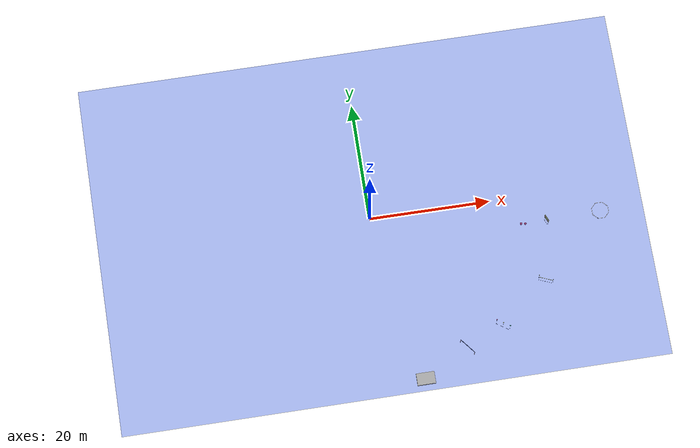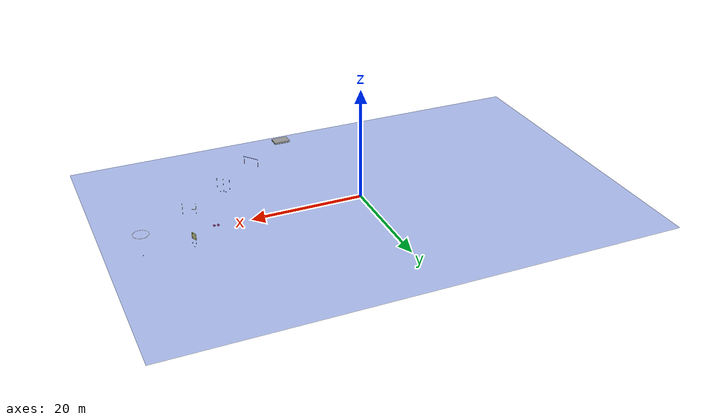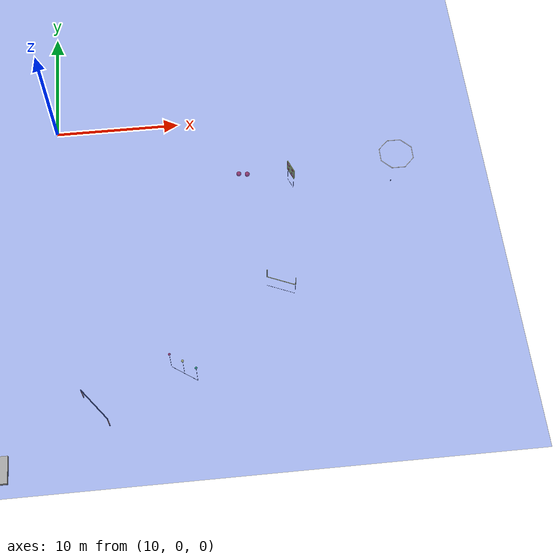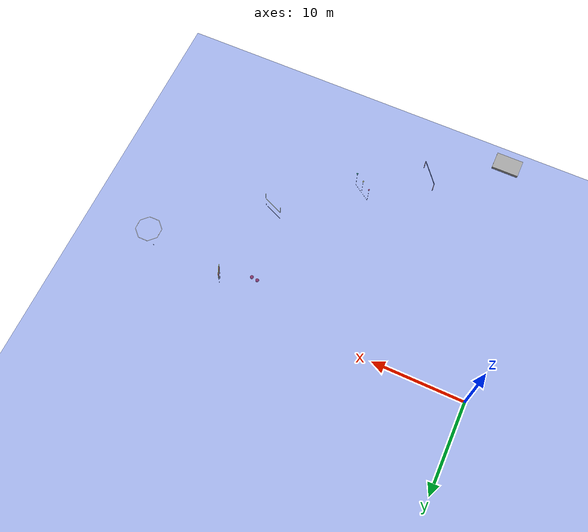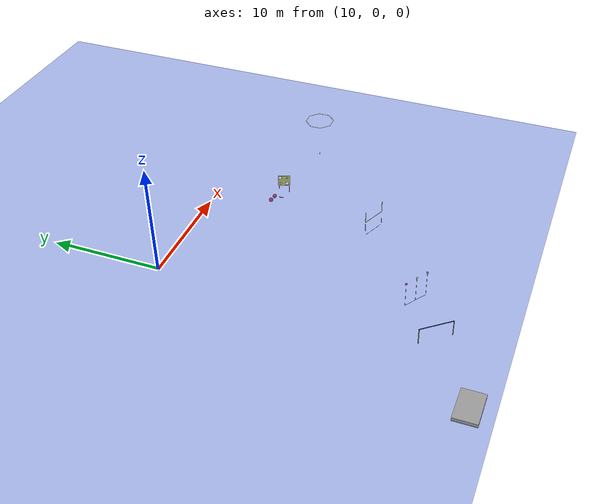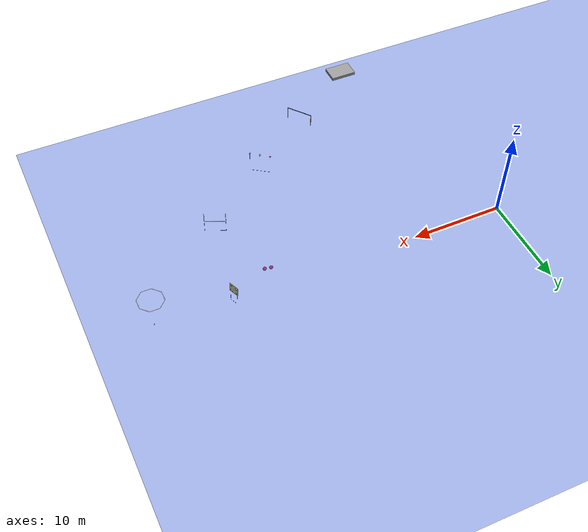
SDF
<sdf version="1.5">
 <world name="default">
  <scene>
   <ambient>0.25 0.3 1 1</ambient>
   <grid>0</grid>
   <background>0.25 0.3 1 1</background>
   <shadows>1</shadows>
  </scene>
  <light type="directional" name="sun0">
   <pose>8 -21 10 0 0.8 -2.8</pose>
   <diffuse>0.8 0.8 0.8 1</diffuse>
   <specular>0.2 0.2 0.2 1</specular>
   <attenuation>
    <range>1000</range>
    <constant>0.9</constant>
    <linear>0.01</linear>
    <quadratic>0.001</quadratic>
   </attenuation>
   <direction>-0.5 0.1 -0.9</direction>
  </light>
  <light type="directional" name="sun1">
   <pose>8 -20 10 0 0.8 0</pose>
   <diffuse>0.8 0.8 0.8 1</diffuse>
   <specular>0.2 0.2 0.2 1</specular>
   <attenuation>
    <range>1000</range>
    <constant>0.9</constant>
    <linear>0.01</linear>
    <quadratic>0.001</quadratic>
   </attenuation>
   <direction>-0.5 0.1 -0.9</direction>
  </light>
  <light type="directional" name="sun2">
   <pose>8 -19 10 0 0 0</pose>
   <diffuse>0.8 0.8 0.8 1</diffuse>
   <specular>0.2 0.2 0.2 1</specular>
   <attenuation>
    <range>1000</range>
    <constant>0.9</constant>
    <linear>0.01</linear>
    <quadratic>0.001</quadratic>
   </attenuation>
   <direction>-0.5 0.1 -0.9</direction>
  </light>
  <light type="directional" name="sun3">
   <pose>8 -19 10 1.75 0 0</pose>
   <diffuse>0.8 0.8 0.8 1</diffuse>
   <specular>0.2 0.2 0.2 1</specular>
   <attenuation>
    <range>1000</range>
    <constant>0.9</constant>
    <linear>0.01</linear>
    <quadratic>0.001</quadratic>
   </attenuation>
   <direction>-0.5 0.1 -0.9</direction>
  </light>
  <light type="directional" name="sun4">
   <pose>8 -19 10 1.75 0 2.9</pose>
   <diffuse>0.8 0.8 0.8 1</diffuse>
   <specular>0.2 0.2 0.2 1</specular>
   <attenuation>
    <range>1000</range>
    <constant>0.9</constant>
    <linear>0.01</linear>
    <quadratic>0.001</quadratic>
   </attenuation>
   <direction>-0.5 0.1 -0.9</direction>
  </light>
  <model name="ceiling_plane">
   <static>true</static>
   <pose>0 0 -0.8 0 0 0</pose>
   <link name="link">
    <visual name="visual">
     <cast_shadows>false</cast_shadows>
     <geometry><box><size>90 60 .001</size></box></geometry>
     <material>
      <script><uri>file://media/materials/scripts/gazebo.material</uri><name>Gazebo/BlueTransparent</name></script>
     </material>
     <transparency>0.6</transparency>
    </visual>
   </link>
  </model>
  <model name="dock_side_a">
   <static>true</static>
   <pose>4.8 -28.0 -0.67 0 0 0</pose>
   <link name="link">
    <collision name="collision"><geometry><box><size>3 2 0.35</size></box></geometry></collision>
    <visual name="visual">
     <geometry><box><size>3 2 0.35</size></box></geometry>
     <material>
      <script><uri>file://media/materials/scripts/gazebo.material</uri><name>Gazebo/Grey</name></script>
     </material>
    </visual>
   </link>
  </model>
  <model name="pinger_a">
   <static>true</static>
   <pose>37.88 -4.1 -4.9 0 0 0</pose>
   <link name="link">
    <visual name="visual">
     <geometry><cylinder><radius>0.03</radius><length>0.15</length></cylinder></geometry>
     <material>
      <script><uri>file://media/materials/scripts/gazebo.material</uri><name>Gazebo/FlatBlack</name></script>
     </material>
    </visual>
   </link>
  </model>
  <include><name>gate_side_a</name><pose>12.4 -23.6 -0.9 0 0 -0.9</pose><uri>model://gate</uri></include>
  <include><name>buoys_side_a</name><pose>19.0 -20.2 -5.0 0 0 -0.6</pose><uri>model://buoys</uri></include>
  <include>
   <name>channel_side_a</name>
   <pose>27.3 -13.6 -2.25 0 0 -0.4</pose>
   <uri>model://navigation_channel</uri>
  </include>
  <include><name>octagon_side_a</name><pose>37.88 -4.1 -0.75 0 0 0</pose><uri>model://octagon</uri></include>
  <include><name>marker_bin1_side_a</name><pose>25.93 -4.0 -4.54 0 0 0</pose><uri>model://bins</uri></include>
  <include><name>marker_bin2_side_a</name><pose>26.62 -4.1 -4.54 0 0 0</pose><uri>model://bins</uri></include>
  <include>
   <name>torpedo_target_side_a</name>
   <pose>29.2 -3.5 -2.87 0 0 -1.18</pose>
   <uri>model://torpedo_target</uri>
  </include>
 </world>
</sdf>

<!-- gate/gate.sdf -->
<sdf version='1.5'>

  <model name='gate'>
    <pose>0 0 0 0 0 0</pose>
    <self_collide> 0 </self_collide>
    <static> 1</static>

    <link name='gate_top'>
      <pose>0 0 0 0 1.5707 0</pose>
      <visual name='gate_top_vis'>
        <geometry>
          <cylinder>
            <radius>0.0381</radius>
            <length>3.05</length>
          </cylinder>
        </geometry>
        <material>
          <script>
            <uri>file://media/materials/scripts/gazebo.material</uri>
            <name>Gazebo/FlatBlack</name>
          </script>
        </material>
      </visual>
      <collision name='gate_top_collide'>
        <pose>0 0 0 0 1.5707 0</pose>
        <geometry>
          <cylinder>
            <radius>0.0381</radius>
            <length>3.05</length>
          </cylinder>
        </geometry>
      </collision>
    </link>

    <link name='gate_right'>
      <pose>1.525 0 -0.762 0 0 0</pose>
      <visual name='gate_right_vis'>
        <geometry>
          <cylinder>
            <radius>0.0381</radius>
            <length>1.21</length>
          </cylinder>
        </geometry>
        <material>
          <script>
            <uri>file://media/materials/scripts/gazebo.material</uri>
            <name>Gazebo/Orange</name>
          </script>
          <diffuse>0.6 0.3088 0.0468 1</diffuse>
        </material>
      </visual>
      <visual name='gate_right_top'>
        <pose>0 0 0.6858 0 0 0</pose>
        <geometry>
          <cylinder>
            <radius>0.0381</radius>
            <length>0.16</length>
          </cylinder>
        </geometry>
        <material>
          <script>
            <uri>file://media/materials/scripts/gazebo.material</uri>
            <name>Gazebo/FlatBlack</name>
          </script>
        </material>
      </visual>
      <visual name='gate_right_bottom'>
        <pose>0 0 -0.6858 0 0 0</pose>
        <geometry>
          <cylinder>
            <radius>0.0381</radius>
            <length>0.16</length>
          </cylinder>
        </geometry>
        <material>
          <script>
              <uri>file://media/materials/scripts/gazebo.material</uri>
              <name>Gazebo/FlatBlack</name>
          </script>
        </material>
      </visual>
      <collision name='gate_right_collide'>
        <pose>1.525 0 -0.762 0 0 0</pose>
        <geometry>
          <cylinder>
            <radius>0.0381</radius>
            <length>1.52</length>
          </cylinder>
        </geometry>
      </collision>
    </link>

    <link name='gate_left'>
      <pose>-1.525 0 -0.762 0 0 0</pose>
      <visual name='gate_left_vis'>
        <geometry>
          <cylinder>
            <radius>0.0381</radius>
            <length>1.21</length>
          </cylinder>
        </geometry>
        <material>
          <script>
            <uri>file://media/materials/scripts/gazebo.material</uri>
            <name>Gazebo/Orange</name>
          </script>
          <diffuse>0.6 0.3088 0.0468 1</diffuse>
        </material>
      </visual>
      <visual name='gate_left_top'>
        <pose>0 0 0.6858 0 0 0</pose>
        <geometry>
          <cylinder>
            <radius>0.0381</radius>
            <length>0.16</length>
          </cylinder>
        </geometry>
        <material>
          <script>
            <uri>file://media/materials/scripts/gazebo.material</uri>
            <name>Gazebo/FlatBlack</name>
          </script>
        </material>
      </visual>
      <visual name='gate_left_bottom'>
        <pose>0 0 -0.6858 0 0 0</pose>
        <geometry>
          <cylinder>
            <radius>0.0381</radius>
            <length>0.16</length>
          </cylinder>
        </geometry>
        <material>
          <script>
              <uri>file://media/materials/scripts/gazebo.material</uri>
              <name>Gazebo/FlatBlack</name>
          </script>
        </material>
      </visual>
      <collision name='gate_left_collide'>
        <pose>-1.525 0 -0.762 0 0 0</pose>
        <geometry>
          <cylinder>
            <radius>0.0381</radius>
            <length>1.52</length>
          </cylinder>
        </geometry>
      </collision>
    </link>

  </model>
</sdf>

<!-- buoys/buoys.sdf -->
<sdf version='1.5'>

  <model name='buoys'>
    <pose>0 0 0 0 0 0</pose>
    <self_collide> 0 </self_collide>
    <static> 1</static>

    <link name='red_buoy'>
      <pose>-1.2 0 2.5 0 0 0</pose>
      <visual name='red_vis'>
        <geometry>
          <sphere><radius>0.1</radius></sphere>
        </geometry>
        <material>
          <script>
            <uri>file://media/materials/scripts/gazebo.material</uri>
            <name>Gazebo/Red</name>
          </script>
          <diffuse>0.6 0 0 1</diffuse>
        </material>
      </visual>
      <collision name='red_collide'>
        <geometry>
          <sphere><radius>0.1</radius></sphere>
        </geometry>
      </collision>
    </link>
    <link name='green_buoy'>
      <pose>1.2 0 2.6 0 0 0</pose>
      <visual name='green_vis'>
        <geometry>
          <sphere><radius>0.1</radius></sphere>
        </geometry>
        <material>
          <script>
            <uri>file://media/materials/scripts/gazebo.material</uri>
            <name>Gazebo/Green</name>
          </script>
          <diffuse>0 0.6 0 1</diffuse>
        </material>
      </visual>
      <collision name='green_collide'>
        <geometry>
          <sphere><radius>0.1</radius></sphere>
        </geometry>
      </collision>
    </link>
    <link name='yellow_buoy'>
        <pose>0 0 2.6 0 0 0</pose>
      <visual name='yellow_vis'>
        <geometry>
          <sphere><radius>0.1</radius></sphere>
        </geometry>
        <material>
          <script>
            <uri>file://media/materials/scripts/gazebo.material</uri>
            <name>Gazebo/Yellow</name>
          </script>
          <diffuse>0.6 0.6 0 1</diffuse>
        </material>
      </visual>
      <collision name='yellow_collide'>
        <geometry>
          <sphere><radius>0.1</radius></sphere>
        </geometry>
      </collision>
    </link>
    <link name='bottom_rod'>
        <pose>0 0 0 0 1.5707 0</pose>
        <visual name='bottom_rod_vis'>
          <geometry>
            <cylinder>
              <radius>0.01</radius>
              <length>2.4</length>
            </cylinder>
          </geometry>
        <material>
          <script>
            <uri>file://media/materials/scripts/gazebo.material</uri>
            <name>Gazebo/FlatBlack</name>
          </script>
          <diffuse>0.3 0.3 0.3 1</diffuse>
        </material>
        </visual>
    </link>
    <link name='red_rod'>
        <pose>-1.2 0 1.2 0 0 0</pose>
        <visual name='red_rod_vis'>
          <geometry>
            <cylinder>
              <radius>0.01</radius>
              <length>2.4</length>
            </cylinder>
          </geometry>
        <material>
          <script>
            <uri>file://media/materials/scripts/gazebo.material</uri>
            <name>Gazebo/FlatBlack</name>
          </script>
          <diffuse>0.3 0.3 0.3 1</diffuse>
        </material>
        </visual>
    </link>
    <link name='green_rod'>
        <pose>0 0 1.26 0 0 0</pose>
        <visual name='green_rod_vis'>
          <geometry>
            <cylinder>
              <radius>0.01</radius>
              <length>2.5</length>
            </cylinder>
          </geometry>
        <material>
          <script>
            <uri>file://media/materials/scripts/gazebo.material</uri>
            <name>Gazebo/FlatBlack</name>
          </script>
          <diffuse>0.3 0.3 0.3 1</diffuse>
        </material>
        </visual>
    </link>
    <link name='yellow_rod'>
        <pose>1.2 0 1.26 0 0 0</pose>
        <visual name='yellow_rod_vis'>
          <geometry>
            <cylinder>
              <radius>0.01</radius>
              <length>2.5</length>
            </cylinder>
          </geometry>
        <material>
          <script>
            <uri>file://media/materials/scripts/gazebo.material</uri>
            <name>Gazebo/FlatBlack</name>
          </script>
          <diffuse>0.3 0.3 0.3 1</diffuse>
        </material>
        </visual>
    </link>

  </model>
</sdf>

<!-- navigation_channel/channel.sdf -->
<sdf version='1.5'>

  <model name='channel'>
    <pose>0 0 0 0 0 0</pose>
    <self_collide> 0 </self_collide>
    <static> 1</static>

    <link name='bottom'>
      <pose>0 0 -1.2 0 1.5707 0</pose>
      <visual name='bottom_vis'>
        <geometry>
          <cylinder>
            <radius>0.0254</radius>
            <length>2.4</length>
          </cylinder>
        </geometry>
        <material>
          <script>
            <uri>file://media/materials/scripts/gazebo.material</uri>
            <name>Gazebo/Yellow</name>
          </script>
          <diffuse>0.6 0.6 0 1</diffuse>
        </material>
      </visual>
      <collision name='bottom_collide'>
        <pose>0 0 -1.2 0 1.5707 0</pose>
        <geometry>
          <cylinder>
            <radius>0.0254</radius>
            <length>2.4</length>
          </cylinder>
        </geometry>
      </collision>
    </link>

    <link name='left'>
      <pose>-1.2 0 -0.6 0 0 0</pose>
      <visual name='left_vis'>
        <geometry>
          <cylinder>
            <radius>0.0254</radius>
            <length>1.2</length>
          </cylinder>
        </geometry>
        <material>
          <script>
            <uri>file://media/materials/scripts/gazebo.material</uri>
            <name>Gazebo/Yellow</name>
          </script>
          <diffuse>0.6 0.6 0 1</diffuse>
        </material>
      </visual>
      <collision name='left_collide'>
        <pose>-1.2 0 0.6 0 0 0</pose>
        <geometry>
          <cylinder>
            <radius>0.0254</radius>
            <length>1.2</length>
          </cylinder>
        </geometry>
      </collision>
    </link>

    <link name='right'>
      <pose>1.2 0 -0.6 0 0 0</pose>
      <visual name='right_vis'>
        <geometry>
          <cylinder>
            <radius>0.0254</radius>
            <length>1.2</length>
          </cylinder>
        </geometry>
        <material>
          <script>
            <uri>file://media/materials/scripts/gazebo.material</uri>
            <name>Gazebo/Yellow</name>
          </script>
          <diffuse>0.6 0.6 0 1</diffuse>
        </material>
      </visual>
      <collision name='right_collide'>
        <pose>1.2 0 0.6 0 0 0</pose>
        <geometry>
          <cylinder>
            <radius>0.0254</radius>
            <length>1.2</length>
          </cylinder>
        </geometry>
      </collision>
    </link>

    <link name='left_tether'>
      <pose>-1.2 0 -2.0 0 0 0</pose>
      <visual name='left_tether_vis'>
        <geometry>
          <cylinder>
            <radius>0.01</radius>
            <length>1.5</length>
          </cylinder>
        </geometry>
        <material>
          <script>
            <uri>file://media/materials/scripts/gazebo.material</uri>
            <name>Gazebo/FlatBlack</name>
          </script>
          <diffuse>0.3 0.3 0.3 1</diffuse>
        </material>
      </visual>
      <collision name='left_tether_collide'>
        <pose>-1.2 0 -2.0 0 0 0</pose>
        <geometry>
          <cylinder>
            <radius>0.01</radius>
            <length>1.5</length>
          </cylinder>
        </geometry>
      </collision>
    </link>

    <link name='right_tether'>
      <pose>1.2 0 -2.0 0 0 0</pose>
      <visual name='right_tether_vis'>
        <geometry>
          <cylinder>
            <radius>0.01</radius>
            <length>1.5</length>
          </cylinder>
        </geometry>
        <material>
          <script>
            <uri>file://media/materials/scripts/gazebo.material</uri>
            <name>Gazebo/FlatBlack</name>
          </script>
          <diffuse>0.3 0.3 0.3 1</diffuse>
        </material>
      </visual>
      <collision name='right_tether_collide'>
        <pose>1.2 0 -2.0 0 0 0</pose>
        <geometry>
          <cylinder>
            <radius>0.01</radius>
            <length>1.5</length>
          </cylinder>
        </geometry>
      </collision>
    </link>

    <link name='floor'>
      <pose>0 0 -2.75 0 1.5707 0</pose>
      <visual name='floor_vis'>
        <geometry>
          <cylinder>
            <radius>0.01</radius>
            <length>2.4</length>
          </cylinder>
        </geometry>
        <material>
          <script>
            <uri>file://media/materials/scripts/gazebo.material</uri>
            <name>Gazebo/FlatBlack</name>
          </script>
          <diffuse>0.3 0.3 0.3 1</diffuse>
        </material>
      </visual>
      <collision name='floor_collide'>
        <pose>0 0 -2.75 0 1.5707 0</pose>
        <geometry>
          <cylinder>
            <radius>0.01</radius>
            <length>2.4</length>
          </cylinder>
        </geometry>
      </collision>
    </link>
  </model>
</sdf>

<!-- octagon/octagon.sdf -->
<sdf version='1.5'>

  <model name='octagon'>
    <pose>0 0 0 0 0 0</pose>
    <self_collide> 0 </self_collide>
    <static> 1</static>

    <link name='rod1'>
        <pose>0 1.35 0 0 1.5707 0</pose>
        <visual name='rod1_vis'>
          <geometry>
            <cylinder>
              <radius>0.0254</radius>
              <length>1.118</length>
            </cylinder>
          </geometry>
        <material>
          <script>
            <uri>file://media/materials/scripts/gazebo.material</uri>
            <name>Gazebo/White</name>
          </script>
          <diffuse>0.3 0.3 0.3 1</diffuse>
        </material>
        </visual>
        <collision name='rod1_collide'>
          <pose>1.35 0 0 0 1.5707 0</pose>
          <geometry>
            <cylinder>
              <radius>0.0254</radius>
              <length>1.118</length>
            </cylinder>
          </geometry>
        </collision>
    </link>

    <link name='rod2'>
        <pose>0 -1.35 0 0 1.5707 0</pose>
        <visual name='rod2_vis'>
          <geometry>
            <cylinder>
              <radius>0.0254</radius>
              <length>1.118</length>
            </cylinder>
          </geometry>
        <material>
          <script>
            <uri>file://media/materials/scripts/gazebo.material</uri>
            <name>Gazebo/White</name>
          </script>
          <diffuse>0.3 0.3 0.3 1</diffuse>
        </material>
        </visual>
        <collision name='rod2_collide'>
          <pose>-1.35 0 0 0 1.5707 0</pose>
          <geometry>
            <cylinder>
              <radius>0.0254</radius>
              <length>1.118</length>
            </cylinder>
          </geometry>
        </collision>
    </link>

    <link name='rod3'>
        <pose>1.35 0 0 0 1.5707 1.5707</pose>
        <visual name='rod3_vis'>
          <geometry>
            <cylinder>
              <radius>0.0254</radius>
              <length>1.118</length>
            </cylinder>
          </geometry>
        <material>
          <script>
            <uri>file://media/materials/scripts/gazebo.material</uri>
            <name>Gazebo/White</name>
          </script>
          <diffuse>0.3 0.3 0.3 1</diffuse>
        </material>
        </visual>
        <collision name='rod3_collide'>
          <pose>0 1.35 0 0 1.5707 1.5707</pose>
          <geometry>
            <cylinder>
              <radius>0.0254</radius>
              <length>1.118</length>
            </cylinder>
          </geometry>
        </collision>
    </link>

    <link name='rod4'>
        <pose>-1.35 0 0 0 1.5707 1.5707</pose>
        <visual name='rod4_vis'>
          <geometry>
            <cylinder>
              <radius>0.0254</radius>
              <length>1.118</length>
            </cylinder>
          </geometry>
        <material>
          <script>
            <uri>file://media/materials/scripts/gazebo.material</uri>
            <name>Gazebo/White</name>
          </script>
          <diffuse>0.3 0.3 0.3 1</diffuse>
        </material>
        </visual>
        <collision name='rod4_collide'>
          <pose>0 -1.35 0 0 1.5707 1.5707</pose>
          <geometry>
            <cylinder>
              <radius>0.0254</radius>
              <length>1.118</length>
            </cylinder>
          </geometry>
        </collision>
    </link>

    <link name='rod5'>
        <pose>0.95 0.95 0 0 1.5707 2.356</pose>
        <visual name='rod5_vis'>
          <geometry>
            <cylinder>
              <radius>0.0254</radius>
              <length>1.118</length>
            </cylinder>
          </geometry>
        <material>
          <script>
            <uri>file://media/materials/scripts/gazebo.material</uri>
            <name>Gazebo/White</name>
          </script>
          <diffuse>0.3 0.3 0.3 1</diffuse>
        </material>
        </visual>
        <collision name='rod5_collide'>
          <pose>0.95 0.95 0 0 1.5707 2.356</pose>
          <geometry>
            <cylinder>
              <radius>0.0254</radius>
              <length>1.118</length>
            </cylinder>
          </geometry>
        </collision>
    </link>

    <link name='rod6'>
        <pose>-0.95 0.95 0 0 1.5707 -2.356</pose>
        <visual name='rod6_vis'>
          <geometry>
            <cylinder>
              <radius>0.0254</radius>
              <length>1.118</length>
            </cylinder>
          </geometry>
        <material>
          <script>
            <uri>file://media/materials/scripts/gazebo.material</uri>
            <name>Gazebo/White</name>
          </script>
          <diffuse>0.3 0.3 0.3 1</diffuse>
        </material>
        </visual>
        <collision name='rod6_collide'>
          <pose>-0.95 0.95 0 0 1.5707 -2.356</pose>
          <geometry>
            <cylinder>
              <radius>0.0254</radius>
              <length>1.118</length>
            </cylinder>
          </geometry>
        </collision>
    </link>

    <link name='rod7'>
        <pose>-0.95 -0.95 0 0 1.5707 2.356</pose>
        <visual name='rod7_vis'>
          <geometry>
            <cylinder>
              <radius>0.0254</radius>
              <length>1.118</length>
            </cylinder>
          </geometry>
        <material>
          <script>
            <uri>file://media/materials/scripts/gazebo.material</uri>
            <name>Gazebo/White</name>
          </script>
          <diffuse>0.3 0.3 0.3 1</diffuse>
        </material>
        </visual>
        <collision name='rod7_collide'>
          <pose>-0.95 -0.95 0 0 1.5707 2.356</pose>
          <geometry>
            <cylinder>
              <radius>0.0254</radius>
              <length>1.118</length>
            </cylinder>
          </geometry>
        </collision>
    </link>

    <link name='rod8'>
        <pose>0.95 -0.95 0 0 1.5707 -2.356</pose>
        <visual name='rod8_vis'>
          <geometry>
            <cylinder>
              <radius>0.0254</radius>
              <length>1.118</length>
            </cylinder>
          </geometry>
        <material>
          <script>
            <uri>file://media/materials/scripts/gazebo.material</uri>
            <name>Gazebo/White</name>
          </script>
          <diffuse>0.3 0.3 0.3 1</diffuse>
        </material>
        </visual>
        <collision name='rod8_collide'>
          <pose>0.95 -0.95 0 0 1.5707 -2.356</pose>
          <geometry>
            <cylinder>
              <radius>0.0254</radius>
              <length>1.118</length>
            </cylinder>
          </geometry>
        </collision>
    </link>
  </model>
</sdf>

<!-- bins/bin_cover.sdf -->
<sdf version='1.5'>

  <model name='bin_cover'>
    <pose>0 0 0 0 0 0</pose>
    <self_collide> 0 </self_collide>
    <static> 1</static>

    <link name='red_buoy'>
      <pose>-1.2 0 2.5 0 0 0</pose>
      <visual name='red_vis'>
        <geometry>
          <sphere><radius>0.2</radius></sphere>
        </geometry>
        <material>
          <script>
            <uri>file://media/materials/scripts/gazebo.material</uri>
            <name>Gazebo/Red</name>
          </script>
          <diffuse>0.6 0 0 1</diffuse>
        </material>
      </visual>
      <collision name='red_collide'>
        <pose>-1.2 0 2.5 0 0 0</pose>
        <geometry>
          <sphere><radius>0.11</radius></sphere>
        </geometry>
      </collision>
    </link>

  </model>
</sdf>

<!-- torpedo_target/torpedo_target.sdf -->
<sdf version='1.5'>

  <model name='torpedo_target'>
    <pose>0 0 0 0 0 0</pose>
    <self_collide> 0 </self_collide>
    <static> 1</static>

    <link name='board'>
      <pose>0 0 0 0 0 0</pose>
      <visual name='main'>
        <geometry>
            <mesh><uri>file://torpedo_target/TorpedoTarget.dae</uri></mesh>
        </geometry>
      </visual>
      <collision name='main'>
        <pose>0 0 0 1.5707 0 0</pose>
        <geometry>
          <box><size>1.2 1.2 0.05</size></box>
        </geometry>
      </collision>
    </link>

    <link name='legs'>
      <visual name='leg1'>
        <pose>-0.5 0 -1.35 0 0 0 </pose>
        <geometry>
          <cylinder>
            <radius>0.01</radius>
            <length>1.5</length>
          </cylinder>
        </geometry>
        <material>
          <script>
            <uri>file://media/materials/scripts/gazebo.material</uri>
            <name>Gazebo/FlatBlack</name>
          </script>
          <diffuse>0.3 0.3 0.3 1</diffuse>
        </material>
      </visual>
      <visual name='leg2'>
        <pose>0.5 0 -1.35 0 0 0 </pose>
        <geometry>
          <cylinder>
            <radius>0.01</radius>
            <length>1.5</length>
          </cylinder>
        </geometry>
        <material>
          <script>
            <uri>file://media/materials/scripts/gazebo.material</uri>
            <name>Gazebo/FlatBlack</name>
          </script>
          <diffuse>0.3 0.3 0.3 1</diffuse>
        </material>
      </visual>
      <visual name='floor'>
        <pose>0 0 -2.1 0 1.5707 0</pose>
        <geometry>
          <cylinder>
            <radius>0.01</radius>
            <length>1</length>
          </cylinder>
        </geometry>
        <material>
          <script>
            <uri>file://media/materials/scripts/gazebo.material</uri>
            <name>Gazebo/FlatBlack</name>
          </script>
          <diffuse>0.3 0.3 0.3 1</diffuse>
        </material>
      </visual>
    </link>

  </model>
</sdf>
